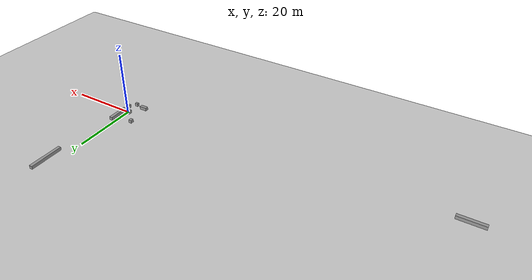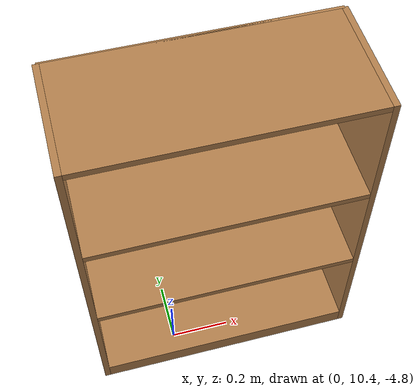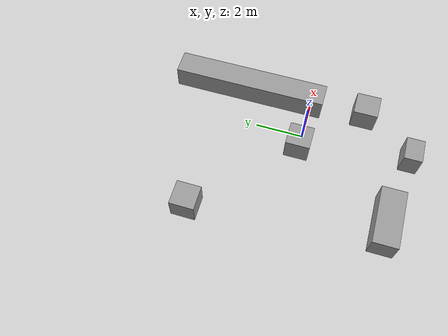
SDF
<sdf version="1.6">
 <world name="default">
  <model name="ground_plane">
   <static>1</static>
   <link name="link">
    <collision name="collision">
     <geometry><plane><normal>0 0 1</normal><size>100 100</size></plane></geometry>
     <surface><friction><ode><mu>100</mu><mu2>50</mu2></ode></friction></surface>
    </collision>
    <visual name="visual">
     <cast_shadows>0</cast_shadows>
     <geometry><plane><normal>0 0 1</normal><size>100 100</size></plane></geometry>
     <material>
      <script><uri>file://media/materials/scripts/gazebo.material</uri><name>Gazebo/Grey</name></script>
     </material>
    </visual>
   </link>
  </model>
  <light name="sun" type="directional">
   <pose>0 0 10 0 -0 0</pose>
   <diffuse>0.8 0.8 0.8 1</diffuse>
   <specular>0.1 0.1 0.1 1</specular>
   <attenuation>
    <range>1000</range>
    <constant>0.9</constant>
    <linear>0.01</linear>
    <quadratic>0.001</quadratic>
   </attenuation>
   <direction>-0.5 0.5 -1</direction>
  </light>
  <gravity>0 0 -9.8</gravity>
  <magnetic_field>6e-06 2.3e-05 -4.2e-05</magnetic_field>
  <atmosphere type="adiabatic"/>
  <physics name="default_physics" default="0" type="ode">
   <max_step_size>0.001</max_step_size>
   <real_time_factor>1</real_time_factor>
   <real_time_update_rate>1000</real_time_update_rate>
  </physics>
  <scene><ambient>0.4 0.4 0.4 1</ambient><background>0.7 0.7 0.7 1</background><shadows>1</shadows></scene>
  <spherical_coordinates>
   <surface_model>EARTH_WGS84</surface_model>
   <latitude_deg>0</latitude_deg>
   <longitude_deg>0</longitude_deg>
   <elevation>0</elevation>
   <heading_deg>0</heading_deg>
  </spherical_coordinates>
  <model name="bookshelf_3">
   <static>1</static>
   <link name="link">
    <inertial><mass>1</mass></inertial>
    <collision name="back">
     <pose>0 0.005 0.6 0 -0 0</pose>
     <geometry><box><size>0.9 0.01 1.2</size></box></geometry>
    </collision>
    <visual name="visual1">
     <pose>0 0.005 0.6 0 -0 0</pose>
     <geometry><box><size>0.9 0.01 1.2</size></box></geometry>
     <material>
      <script><uri>file://media/materials/scripts/gazebo.material</uri><name>Gazebo/Wood</name></script>
     </material>
    </visual>
    <collision name="left_side">
     <pose>0.45 -0.195 0.6 0 -0 0</pose>
     <geometry><box><size>0.02 0.4 1.2</size></box></geometry>
    </collision>
    <visual name="visual2">
     <pose>0.45 -0.195 0.6 0 -0 0</pose>
     <geometry><box><size>0.02 0.4 1.2</size></box></geometry>
     <material>
      <script><uri>file://media/materials/scripts/gazebo.material</uri><name>Gazebo/Wood</name></script>
     </material>
    </visual>
    <collision name="right_side">
     <pose>-0.45 -0.195 0.6 0 -0 0</pose>
     <geometry><box><size>0.02 0.4 1.2</size></box></geometry>
    </collision>
    <visual name="visual3">
     <pose>-0.45 -0.195 0.6 0 -0 0</pose>
     <geometry><box><size>0.02 0.4 1.2</size></box></geometry>
     <material>
      <script><uri>file://media/materials/scripts/gazebo.material</uri><name>Gazebo/Wood</name></script>
     </material>
    </visual>
    <collision name="bottom">
     <pose>0 -0.195 0.03 0 -0 0</pose>
     <geometry><box><size>0.88 0.4 0.06</size></box></geometry>
    </collision>
    <visual name="visual4">
     <pose>0 -0.195 0.03 0 -0 0</pose>
     <geometry><box><size>0.88 0.4 0.06</size></box></geometry>
     <material>
      <script><uri>file://media/materials/scripts/gazebo.material</uri><name>Gazebo/Wood</name></script>
     </material>
    </visual>
    <collision name="top">
     <pose>0 -0.195 1.19 0 -0 0</pose>
     <geometry><box><size>0.88 0.4 0.02</size></box></geometry>
    </collision>
    <visual name="visual5">
     <pose>0 -0.195 1.19 0 -0 0</pose>
     <geometry><box><size>0.88 0.4 0.02</size></box></geometry>
     <material>
      <script><uri>file://media/materials/scripts/gazebo.material</uri><name>Gazebo/Wood</name></script>
     </material>
    </visual>
    <collision name="low_shelf">
     <pose>0 -0.195 0.43 0 -0 0</pose>
     <geometry><box><size>0.88 0.4 0.02</size></box></geometry>
    </collision>
    <visual name="visual6">
     <pose>0 -0.195 0.43 0 -0 0</pose>
     <geometry><box><size>0.88 0.4 0.02</size></box></geometry>
     <material>
      <script><uri>file://media/materials/scripts/gazebo.material</uri><name>Gazebo/Wood</name></script>
     </material>
    </visual>
    <collision name="high_shelf">
     <pose>0 -0.195 0.8 0 -0 0</pose>
     <geometry><box><size>0.88 0.4 0.02</size></box></geometry>
    </collision>
    <visual name="visual7">
     <pose>0 -0.195 0.8 0 -0 0</pose>
     <geometry><box><size>0.88 0.4 0.02</size></box></geometry>
     <material>
      <script><uri>file://media/materials/scripts/gazebo.material</uri><name>Gazebo/Wood</name></script>
     </material>
    </visual>
   </link>
   <pose>0.182884 10.719 -4.83969 0 -0 0</pose>
  </model>
  <model name="unit_box_0">
   <pose>1.65538 2.73798 0.493298 0.002074 1e-06 -0.000248</pose>
   <link name="link">
    <inertial>
     <mass>1</mass>
     <inertia>
      <ixx>0.166667</ixx>
      <ixy>0</ixy>
      <ixz>0</ixz>
      <iyy>0.166667</iyy>
      <iyz>0</iyz>
      <izz>0.166667</izz>
     </inertia>
    </inertial>
    <collision name="collision"><geometry><box><size>1 6.4652 1</size></box></geometry></collision>
    <visual name="visual">
     <geometry><box><size>1 6.4652 1</size></box></geometry>
     <material>
      <script><name>Gazebo/Grey</name><uri>file://media/materials/scripts/gazebo.material</uri></script>
     </material>
    </visual>
   </link>
  </model>
  <model name="unit_box_1">
   <pose>1.68949 -2.3208 0.499995 1e-05 -0 0</pose>
   <link name="link">
    <inertial>
     <mass>1</mass>
     <inertia>
      <ixx>0.166667</ixx>
      <ixy>0</ixy>
      <ixz>0</ixz>
      <iyy>0.166667</iyy>
      <iyz>0</iyz>
      <izz>0.166667</izz>
     </inertia>
    </inertial>
    <collision name="collision"><geometry><box><size>1 1 1</size></box></geometry></collision>
    <visual name="visual">
     <geometry><box><size>1 1 1</size></box></geometry>
     <material>
      <script><name>Gazebo/Grey</name><uri>file://media/materials/scripts/gazebo.material</uri></script>
     </material>
    </visual>
   </link>
  </model>
  <model name="unit_box_2">
   <pose>-3.10861 -3.98318 0.5 0 0 -2.6e-05</pose>
   <link name="link">
    <inertial>
     <mass>1</mass>
     <inertia>
      <ixx>0.166667</ixx>
      <ixy>0</ixy>
      <ixz>0</ixz>
      <iyy>0.166667</iyy>
      <iyz>0</iyz>
      <izz>0.166667</izz>
     </inertia>
    </inertial>
    <collision name="collision"><geometry><box><size>2.39074 1 1</size></box></geometry></collision>
    <visual name="visual">
     <geometry><box><size>2.39074 1 1</size></box></geometry>
     <material>
      <script><name>Gazebo/Grey</name><uri>file://media/materials/scripts/gazebo.material</uri></script>
     </material>
    </visual>
   </link>
  </model>
  <model name="unit_box_3">
   <pose>-0.593617 0.062488 0.499995 1e-05 -0 0</pose>
   <link name="link">
    <inertial>
     <mass>1</mass>
     <inertia>
      <ixx>0.166667</ixx>
      <ixy>0</ixy>
      <ixz>0</ixz>
      <iyy>0.166667</iyy>
      <iyz>0</iyz>
      <izz>0.166667</izz>
     </inertia>
    </inertial>
    <collision name="collision"><geometry><box><size>1 1 1</size></box></geometry></collision>
    <visual name="visual">
     <geometry><box><size>1 1 1</size></box></geometry>
     <material>
      <script><name>Gazebo/Grey</name><uri>file://media/materials/scripts/gazebo.material</uri></script>
     </material>
    </visual>
   </link>
  </model>
  <model name="unit_box_4">
   <pose>-4.47816 3.67629 0.499995 0 1e-05 0</pose>
   <link name="link">
    <inertial>
     <mass>1</mass>
     <inertia>
      <ixx>0.166667</ixx>
      <ixy>0</ixy>
      <ixz>0</ixz>
      <iyy>0.166667</iyy>
      <iyz>0</iyz>
      <izz>0.166667</izz>
     </inertia>
    </inertial>
    <collision name="collision"><geometry><box><size>1 1 1</size></box></geometry></collision>
    <visual name="visual">
     <geometry><box><size>1 1 1</size></box></geometry>
     <material>
      <script><name>Gazebo/Grey</name><uri>file://media/materials/scripts/gazebo.material</uri></script>
     </material>
    </visual>
   </link>
  </model>
  <model name="unit_box_5">
   <pose>0.079116 -4.49444 0.499997 8e-06 -0 -0.000228</pose>
   <link name="link">
    <inertial>
     <mass>1</mass>
     <inertia>
      <ixx>0.166667</ixx>
      <ixy>0</ixy>
      <ixz>0</ixz>
      <iyy>0.166667</iyy>
      <iyz>0</iyz>
      <izz>0.166667</izz>
     </inertia>
    </inertial>
    <collision name="collision"><geometry><box><size>1 0.732485 1</size></box></geometry></collision>
    <visual name="visual">
     <geometry><box><size>1 0.732485 1</size></box></geometry>
     <material>
      <script><name>Gazebo/Grey</name><uri>file://media/materials/scripts/gazebo.material</uri></script>
     </material>
    </visual>
   </link>
  </model>
  <model name="unit_box_6">
   <pose>3.66849 30.0402 0.448248 0.009936 -8.2e-05 0.00821</pose>
   <link name="link">
    <inertial>
     <mass>1</mass>
     <inertia>
      <ixx>0.166667</ixx>
      <ixy>0</ixy>
      <ixz>0</ixz>
      <iyy>0.166667</iyy>
      <iyz>0</iyz>
      <izz>0.166667</izz>
     </inertia>
    </inertial>
    <collision name="collision"><geometry><box><size>1 10.4472 1</size></box></geometry></collision>
    <visual name="visual">
     <geometry><box><size>1 10.4472 1</size></box></geometry>
     <material>
      <script><name>Gazebo/Grey</name><uri>file://media/materials/scripts/gazebo.material</uri></script>
     </material>
    </visual>
   </link>
  </model>
  <model name="unit_box_7">
   <pose>-103.418 -6.23064 0.485621 5e-06 0.003734 0.001341</pose>
   <link name="link">
    <inertial>
     <mass>1</mass>
     <inertia>
      <ixx>0.166667</ixx>
      <ixy>0</ixy>
      <ixz>0</ixz>
      <iyy>0.166667</iyy>
      <iyz>0</iyz>
      <izz>0.166667</izz>
     </inertia>
    </inertial>
    <collision name="collision"><geometry><box><size>7.70905 1 1</size></box></geometry></collision>
    <visual name="visual">
     <geometry><box><size>7.70905 1 1</size></box></geometry>
     <material>
      <script><name>Gazebo/Grey</name><uri>file://media/materials/scripts/gazebo.material</uri></script>
     </material>
    </visual>
   </link>
  </model>
 </world>
</sdf>
